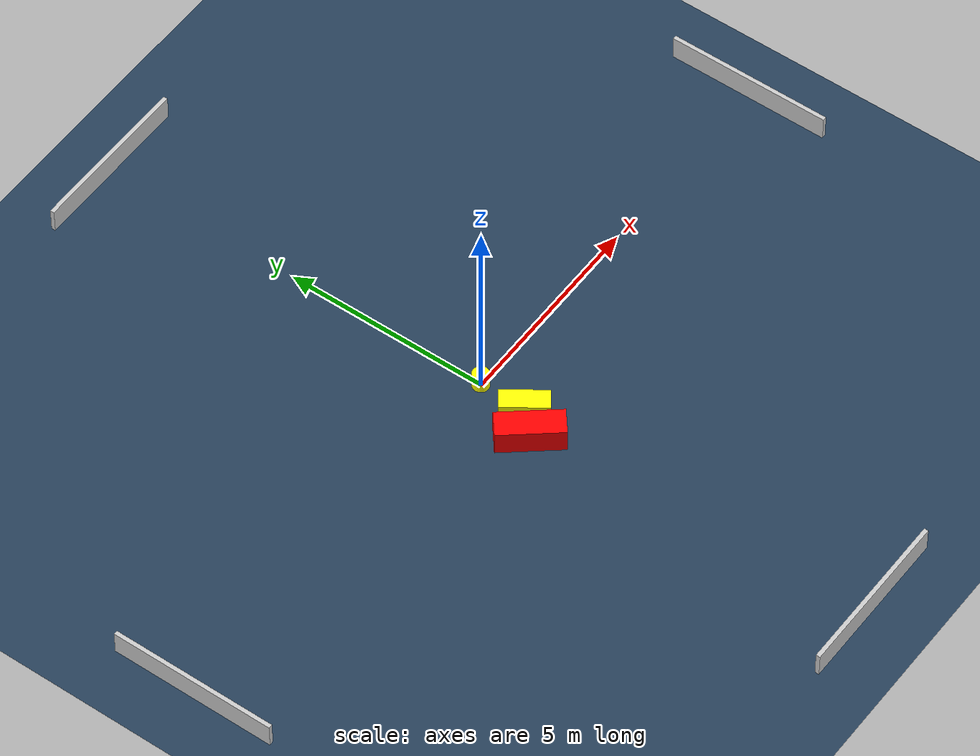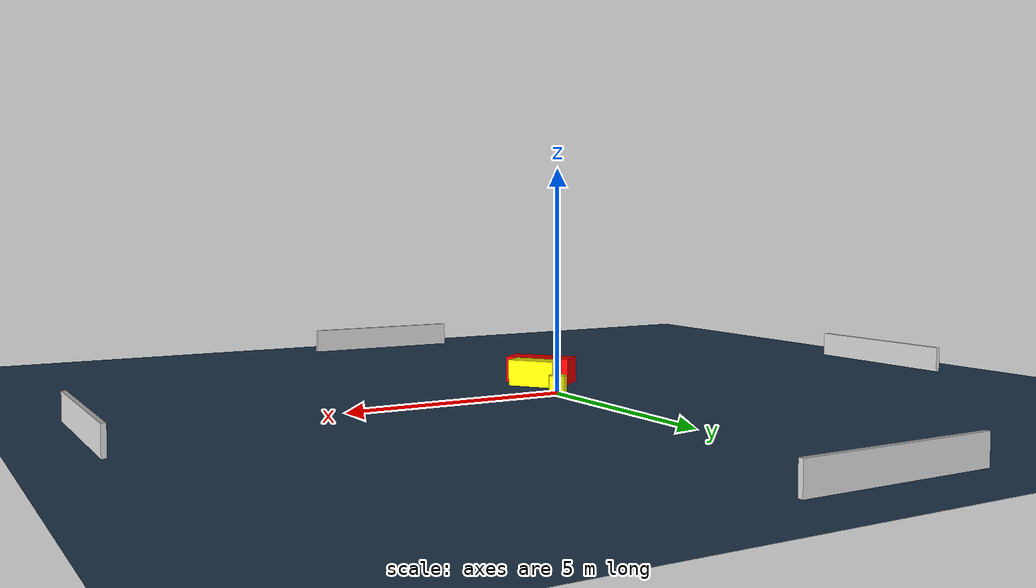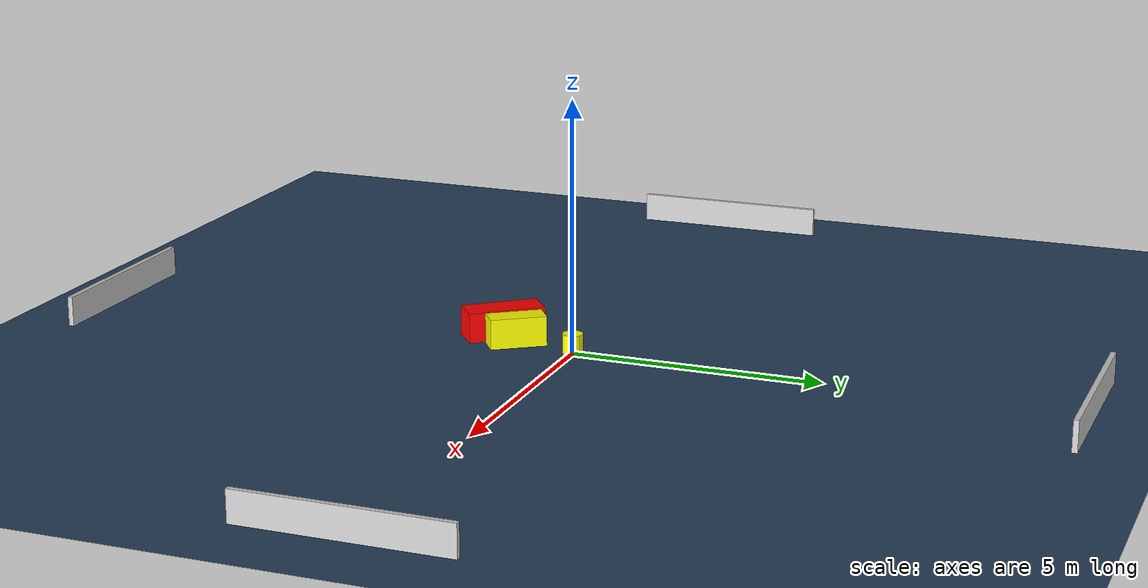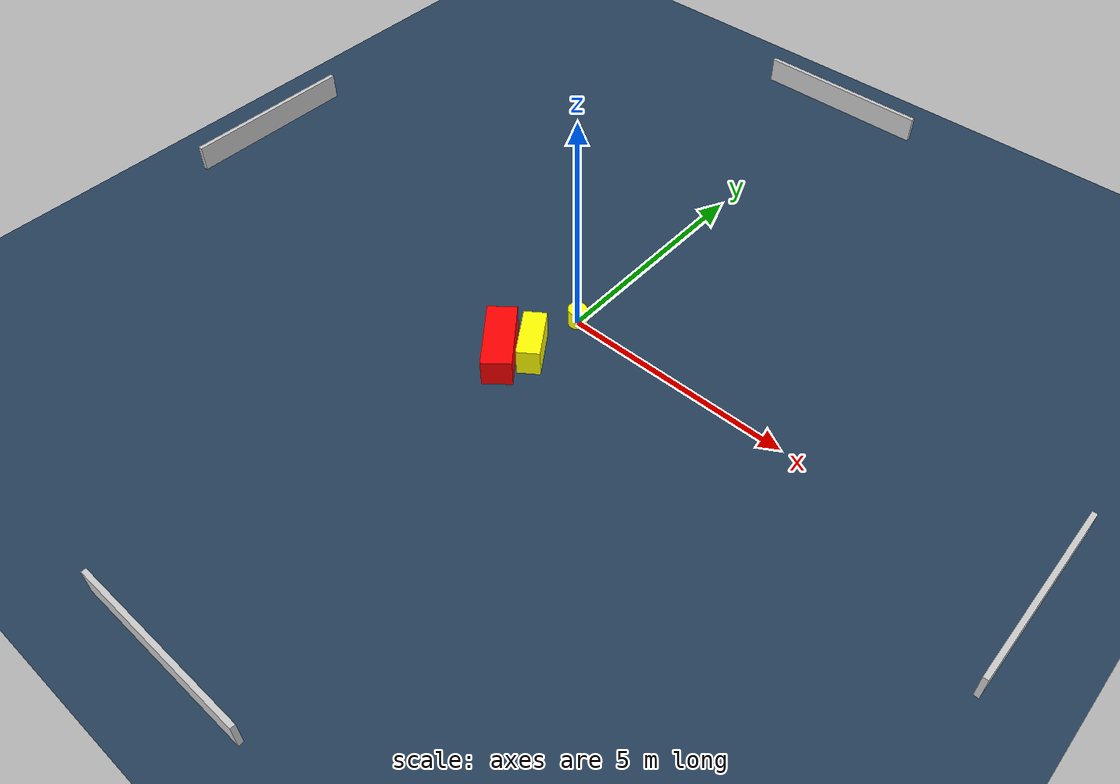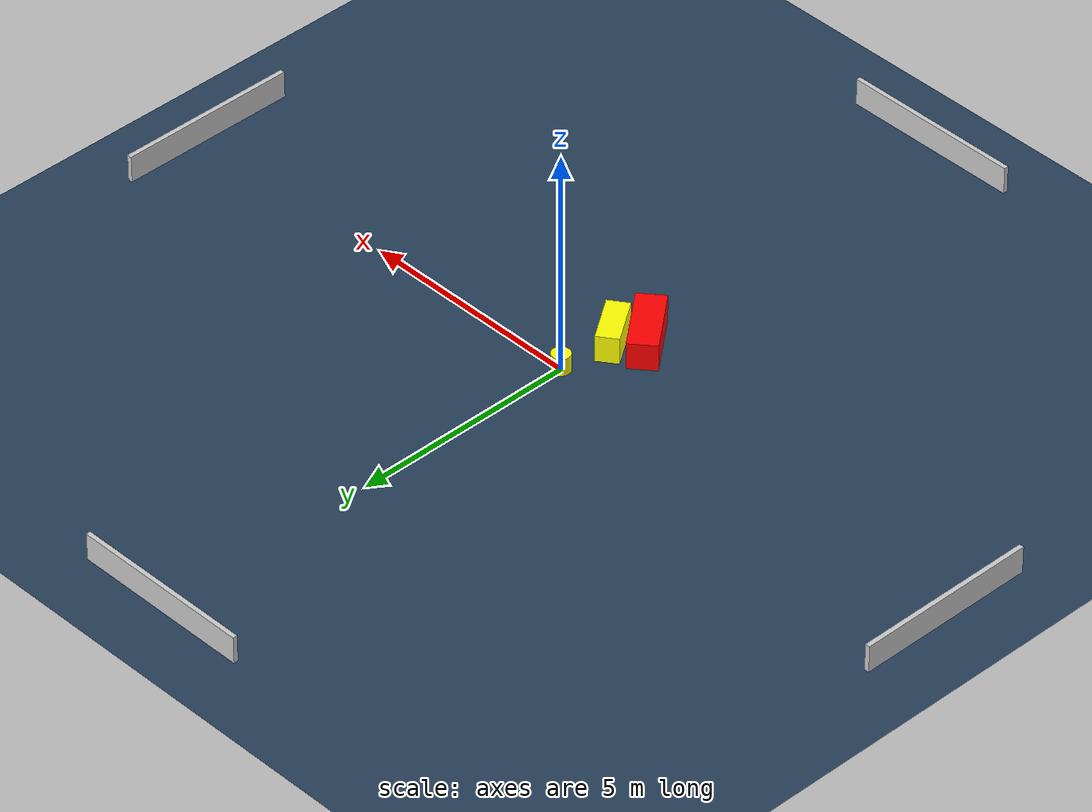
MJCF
<?xml version="1.0" ?>
<mujoco model="generated_environment">
  <option timestep="0.01" integrator="RK4" cone="elliptic"/>
  <default>
    <geom density="1"/>
  </default>
  <asset>
    <texture builtin="gradient" height="3072" name="skybox" rgb1="0.3 0.5 0.7" rgb2="0 0 0" type="skybox" width="512"/>
    <texture builtin="checker" height="300" name="groundplane" rgb1="0.2 0.3 0.4" rgb2="0.1 0.2 0.3" type="2d" width="300"/>
    <material name="groundplane" reflectance="0.2" texrepeat="5 5" texture="groundplane"/>
  </asset>
  <worldbody>
    <light dir="0 0 -1" directional="true" pos="0 0 1.5"/>
    <geom condim="3" friction="0.5 0.005 0.001" material="groundplane" name="floor" pos="0 0 0" size="0 0 0.05" type="plane"/>
    <body name="walls">
      <geom name="wall_1" condim="4" pos="-10.0 0.0 0.3" rgba="0.800000011920929 0.800000011920929 0.800000011920929 1.0" size="0.05 2.0 0.3" type="box"/>
      <geom name="wall_2" condim="4" pos="10.0 0.0 0.3" rgba="0.800000011920929 0.800000011920929 0.800000011920929 1.0" size="0.05 2.0 0.3" type="box"/>
      <geom name="wall_3" condim="4" pos="0.0 -10.0 0.3" rgba="0.800000011920929 0.800000011920929 0.800000011920929 1.0" size="2.0 0.05 0.3" type="box"/>
      <geom name="wall_4" condim="4" pos="0.0 10.0 0.3" rgba="0.800000011920929 0.800000011920929 0.800000011920929 1.0" size="2.0 0.05 0.3" type="box"/>
    </body>
    <body name="robot">
      <joint name="joint_x" type="slide" pos="0 0 0" axis="1 0 0"/>
      <joint name="joint_y" type="slide" pos="0 0 0" axis="0 1 0"/>
      <geom name="robot" type="cylinder" pos="0.0 0.0 0.2" size="0.2 0.2 0.0" mass="5.0" friction="1.0 0.005 0.0001" condim="4" rgba="1.0 1.0 0.0 1.0"/>
    </body>
    <body name="obstacle_1_movable">
      <geom name="obstacle_1_movable" condim="4" pos="-0.12596054583558394 -1.232693442036641 0.3" euler="0 0 214.9475335880376" friction="0.0 0.005 0.001" rgba="1.0 1.0 0.0 1.0" size="0.24090628602676276 0.5621337403557757 0.3" type="box" mass="0.1"/>
      <joint type="free"/>
    </body>
    <body name="obstacle_2_static">
      <geom name="obstacle_2_static" condim="4" pos="-0.5684823921451119 -1.6968131052563755 0.3" euler="0 0 39.187736740260206" friction="0.0 0.005 0.001" rgba="1.0 0.0 0.0 1.0" size="0.3115101164747348 0.7744435916200716 0.3" type="box"/>
    </body>
  </worldbody>
  <actuator>
    <motor name="actuator_x" joint="joint_x" gear="1" ctrlrange="-1 1"/>
    <motor name="actuator_y" joint="joint_y" gear="1" ctrlrange="-1 1"/>
  </actuator>
</mujoco>
